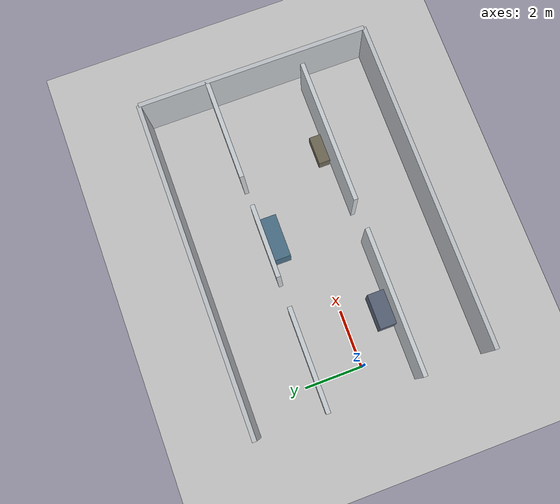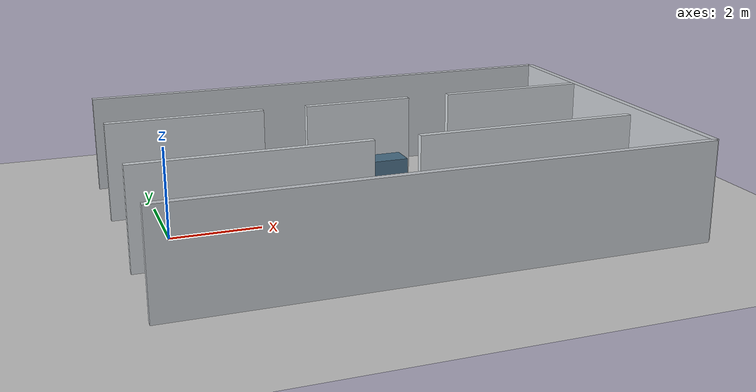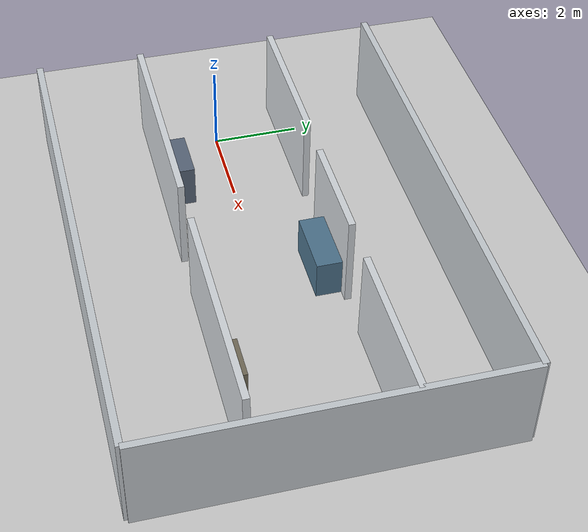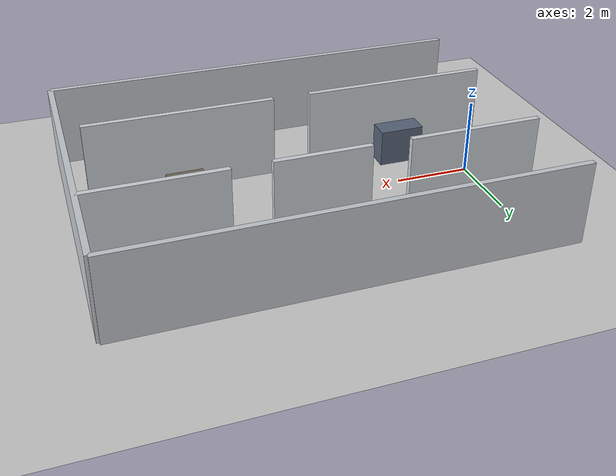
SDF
<?xml version="1.0"?>
<sdf version="1.6">
  <world name="hospital_world">
    <include><uri>model://sun</uri></include>
    <include><uri>model://ground_plane</uri></include>
    <light name="fill" type="directional"><pose>4 0 9 0 0 0</pose>
      <diffuse>0.6 0.6 0.62 1</diffuse><specular>0.1 0.1 0.1 1</specular>
      <direction>-0.2 0.1 -1.0</direction><cast_shadows>false</cast_shadows></light>
    <physics type="ode"><max_step_size>0.005</max_step_size>
      <real_time_factor>1.0</real_time_factor><real_time_update_rate>200</real_time_update_rate></physics>
    <plugin name="gazebo_ros_state" filename="libgazebo_ros_state.so">
      <ros><namespace>/gazebo</namespace></ros><update_rate>20.0</update_rate></plugin>

    <!-- Corridor north wall (door gaps at x 2.5-3.5 and 6.0-7.0) -->
    <model name="wall_n1"><static>true</static><link name="l">
      <collision name="c"><pose>0.75 1.6 1.1 0 0 0</pose><geometry><box><size>3.5 0.15 2.2</size></box></geometry></collision>
      <visual name="v"><pose>0.75 1.6 1.1 0 0 0</pose><geometry><box><size>3.5 0.15 2.2</size></box></geometry>
        <material><ambient>0.82 0.84 0.86 1</ambient><diffuse>0.82 0.84 0.86 1</diffuse></material></visual></link></model>
    <model name="wall_n2"><static>true</static><link name="l">
      <collision name="c"><pose>4.75 1.6 1.1 0 0 0</pose><geometry><box><size>2.5 0.15 2.2</size></box></geometry></collision>
      <visual name="v"><pose>4.75 1.6 1.1 0 0 0</pose><geometry><box><size>2.5 0.15 2.2</size></box></geometry>
        <material><ambient>0.82 0.84 0.86 1</ambient><diffuse>0.82 0.84 0.86 1</diffuse></material></visual></link></model>
    <model name="wall_n3"><static>true</static><link name="l">
      <collision name="c"><pose>8.75 1.6 1.1 0 0 0</pose><geometry><box><size>3.5 0.15 2.2</size></box></geometry></collision>
      <visual name="v"><pose>8.75 1.6 1.1 0 0 0</pose><geometry><box><size>3.5 0.15 2.2</size></box></geometry>
        <material><ambient>0.82 0.84 0.86 1</ambient><diffuse>0.82 0.84 0.86 1</diffuse></material></visual></link></model>
    <!-- Corridor south wall (door gap at x 4.0-5.0) -->
    <model name="wall_s1"><static>true</static><link name="l">
      <collision name="c"><pose>1.5 -1.6 1.1 0 0 0</pose><geometry><box><size>5.0 0.15 2.2</size></box></geometry></collision>
      <visual name="v"><pose>1.5 -1.6 1.1 0 0 0</pose><geometry><box><size>5.0 0.15 2.2</size></box></geometry>
        <material><ambient>0.82 0.84 0.86 1</ambient><diffuse>0.82 0.84 0.86 1</diffuse></material></visual></link></model>
    <model name="wall_s2"><static>true</static><link name="l">
      <collision name="c"><pose>7.5 -1.6 1.1 0 0 0</pose><geometry><box><size>5.0 0.15 2.2</size></box></geometry></collision>
      <visual name="v"><pose>7.5 -1.6 1.1 0 0 0</pose><geometry><box><size>5.0 0.15 2.2</size></box></geometry>
        <material><ambient>0.82 0.84 0.86 1</ambient><diffuse>0.82 0.84 0.86 1</diffuse></material></visual></link></model>

    <!-- Room back walls + ends (enclose the rooms behind the corridor) -->
    <model name="back_n"><static>true</static><link name="l">
      <visual name="v"><pose>4.75 4.0 1.1 0 0 0</pose><geometry><box><size>11.5 0.15 2.2</size></box></geometry>
        <material><ambient>0.78 0.80 0.82 1</ambient><diffuse>0.78 0.80 0.82 1</diffuse></material></visual>
      <collision name="c"><pose>4.75 4.0 1.1 0 0 0</pose><geometry><box><size>11.5 0.15 2.2</size></box></geometry></collision></link></model>
    <model name="back_s"><static>true</static><link name="l">
      <visual name="v"><pose>4.75 -4.0 1.1 0 0 0</pose><geometry><box><size>11.5 0.15 2.2</size></box></geometry>
        <material><ambient>0.78 0.80 0.82 1</ambient><diffuse>0.78 0.80 0.82 1</diffuse></material></visual>
      <collision name="c"><pose>4.75 -4.0 1.1 0 0 0</pose><geometry><box><size>11.5 0.15 2.2</size></box></geometry></collision></link></model>
    <model name="end_e"><static>true</static><link name="l">
      <collision name="c"><pose>10.5 0 1.1 0 0 0</pose><geometry><box><size>0.15 8.0 2.2</size></box></geometry></collision>
      <visual name="v"><pose>10.5 0 1.1 0 0 0</pose><geometry><box><size>0.15 8.0 2.2</size></box></geometry>
        <material><ambient>0.78 0.80 0.82 1</ambient><diffuse>0.78 0.80 0.82 1</diffuse></material></visual></link></model>

    <!-- Nurse-station desk (pinches the corridor), reception desk, waiting bench -->
    <model name="nurse_desk"><static>true</static><link name="l">
      <collision name="c"><pose>5.0 1.25 0.45 0 0 0</pose><geometry><box><size>1.5 0.6 0.9</size></box></geometry></collision>
      <visual name="v"><pose>5.0 1.25 0.45 0 0 0</pose><geometry><box><size>1.5 0.6 0.9</size></box></geometry>
        <material><ambient>0.30 0.45 0.55 1</ambient><diffuse>0.30 0.45 0.55 1</diffuse></material></visual></link></model>
    <model name="reception"><static>true</static><link name="l">
      <collision name="c"><pose>1.5 -1.25 0.5 0 0 0</pose><geometry><box><size>1.2 0.6 1.0</size></box></geometry></collision>
      <visual name="v"><pose>1.5 -1.25 0.5 0 0 0</pose><geometry><box><size>1.2 0.6 1.0</size></box></geometry>
        <material><ambient>0.35 0.40 0.48 1</ambient><diffuse>0.35 0.40 0.48 1</diffuse></material></visual></link></model>
    <model name="bench"><static>true</static><link name="l">
      <collision name="c"><pose>7.5 -1.3 0.25 0 0 0</pose><geometry><box><size>1.0 0.4 0.5</size></box></geometry></collision>
      <visual name="v"><pose>7.5 -1.3 0.25 0 0 0</pose><geometry><box><size>1.0 0.4 0.5</size></box></geometry>
        <material><ambient>0.45 0.42 0.35 1</ambient><diffuse>0.45 0.42 0.35 1</diffuse></material></visual></link></model>
  </world>
</sdf>
